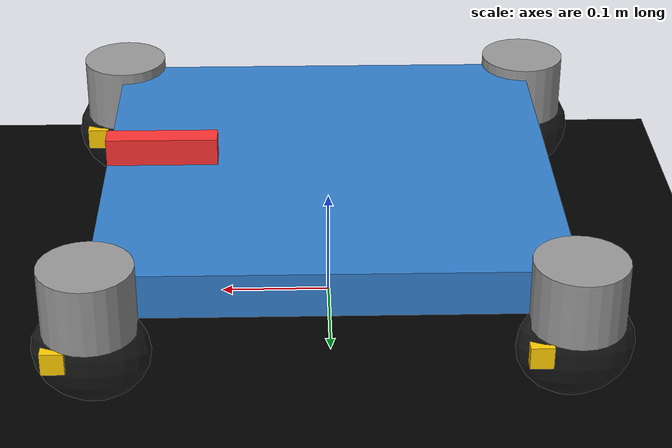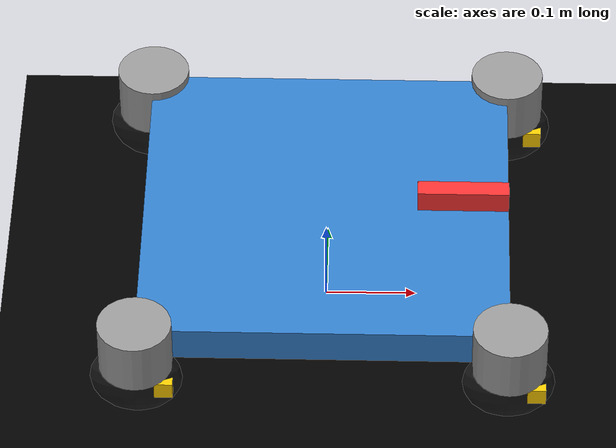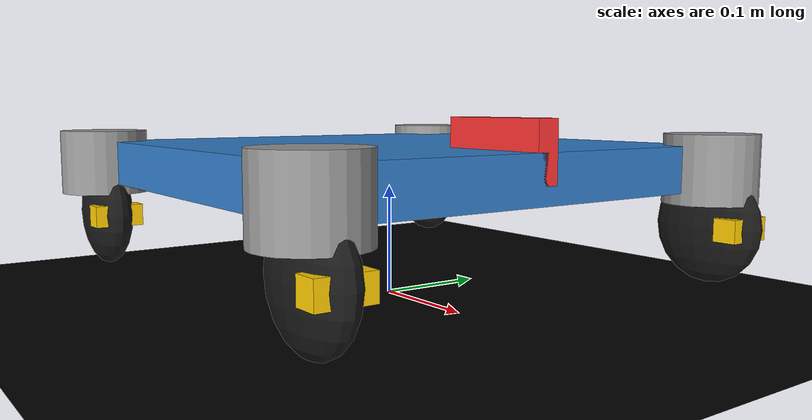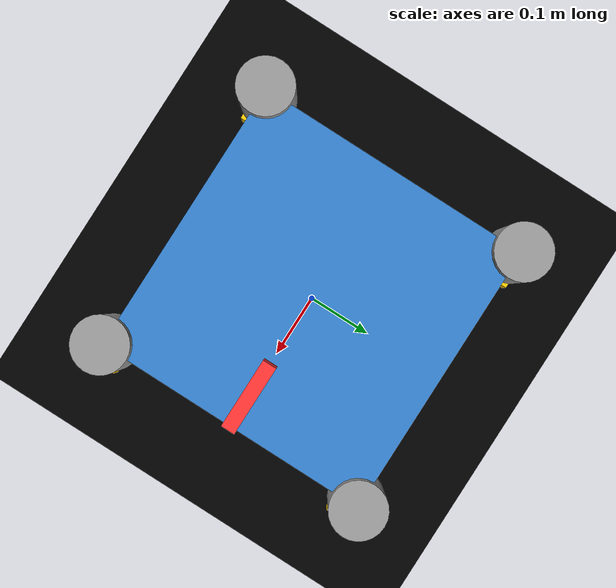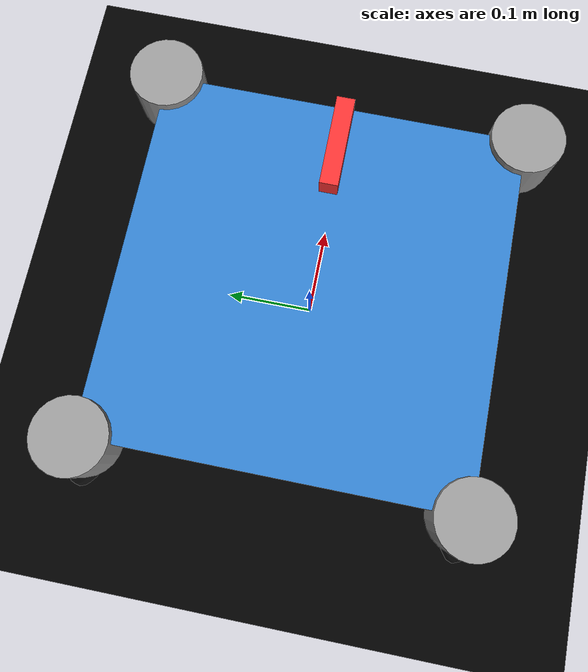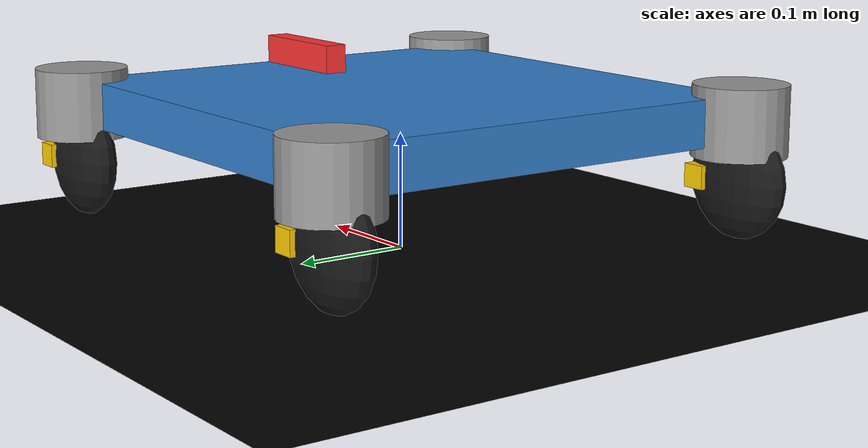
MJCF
<mujoco model="swerve_scene">
  <!--
    ================================================================
    Compiler and Option Settings
    ================================================================
  -->
  <compiler angle="degree" coordinate="local" inertiafromgeom="true"/>
  <option integrator="RK4" timestep="0.001"/>

  <!--
    ================================================================
    Assets and Includes
    ================================================================
  -->
  <asset>
    <texture name="grid_texture" type="2d" builtin="checker" width="300" height="300" rgb1="0 0 0" rgb2="0 0 0" mark="edge" markrgb="1 1 1"/>
    <material name="floor_mat" texture="grid_texture" texrepeat="20 20" texuniform="false" specular="0" shininess="0" reflectance="0"/>
  </asset>

  <!-- Include the robot's physical definition -->
  <include file="robot.xml"/>

  <!--
    Include the desired actuator model.
    Change to "actuators_pos_vel.xml" to use position/velocity controllers.
  -->
  <include file="actuators_pos_vel.xml"/>

  <!--
    ================================================================
    World Body: Contains the environment elements
    ================================================================
  -->
  <worldbody>
    <light diffuse=".5 .5 .5" pos="0 0 4" dir="0 0 -1"/>
    <geom name="floor" type="plane" size="5 5 0.1" material="floor_mat"/>
    <body name="world_link" pos="0 0 1"/>

    <!-- A camera that tracks the chassis of the robot -->
    <camera name="tracking_cam" mode="trackcom" target="chassis" pos="2 0 2"/>
  </worldbody>

  <equality>
    <weld name="gantry" body1="world_link" body2="chassis" relpose="0 0 0.05 1 0 0 0"/>
  </equality>
</mujoco>

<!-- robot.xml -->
<mujoco model="swerve_drive_robot">
  <!--
    Compiler settings for the robot model.
  -->
  <compiler inertiafromgeom="true"/>

  <!--
    ================================================================
    Assets: Materials for visualization
    ================================================================
  -->
  <asset>
    <material name="chassis_mat" rgba="0.2 0.5 0.8 1.0"/>
    <material name="pivot_mat"   rgba="0.6 0.6 0.6 1.0"/>
    <material name="wheel_mat"   rgba="0.1 0.1 0.1 1.0"/>
    <material name="indicator_mat" rgba="1.0 0.8 0.0 1.0"/> <!-- Bright Yellow -->
    <material name="front_indicator_mat" rgba="1.0 0.2 0.2 1.0"/> <!-- Bright Red -->
  </asset>

  <worldbody>
    <body name="chassis" pos="0 0 0.12">
      <joint name="root" type="free"/>
      <!-- CHASSIS GEOM: Mass increased, size is now square. -->
      <geom name="chassis_geom" type="box" size="0.2 0.2 0.02" material="chassis_mat" mass="10" contype="2" conaffinity="1"/>
      <!-- FRONT INDICATOR: A non-colliding geom to show the front. -->
      <geom name="front_indicator" type="box" size="0.05 0.01 0.025" pos="0.15 0 0.02" material="front_indicator_mat" contype="0" conaffinity="0"/>

      <body name="FR_pivot" pos="0.2 0.2 0">
        <joint name="FR_steer_joint" type="hinge" axis="0 0 1" pos="0 0 0"/>
        <!-- PIVOT GEOM: Assigned to group 1, collides with group 0. -->
        <geom name="FR_pivot_geom" type="cylinder" size="0.04 0.03" material="pivot_mat" mass="0.2" contype="2" conaffinity="1"/>
        <body name="FR_wheel" pos="0 0 -0.05">
          <joint name="FR_drive_joint" type="hinge" axis="0 1 0" pos="0 0 0"/>
          <geom name="FR_wheel_geom" type="ellipsoid" size="0.05 0.02 0.05" material="wheel_mat" mass="0.5" contype="4" conaffinity="1" condim="6" friction="1.5 0.1 0.02" solref="0.02 1" solimp="0.9 0.95 0.001"/>
          <!-- SPIN INDICATOR (non-colliding) -->
          <geom name="FR_indicator" type="box" size="0.01 0.01 0.022" pos="0.03 0 0" euler="90 0 0" material="indicator_mat" contype="0" conaffinity="0"/>
        </body>
      </body>

      <body name="FL_pivot" pos="0.2 -0.2 0">
        <joint name="FL_steer_joint" type="hinge" axis="0 0 1" pos="0 0 0"/>
        <geom name="FL_pivot_geom" type="cylinder" size="0.04 0.03" material="pivot_mat" mass="0.2" contype="2" conaffinity="1"/>
        <body name="FL_wheel" pos="0 0 -0.05">
          <joint name="FL_drive_joint" type="hinge" axis="0 1 0" pos="0 0 0"/>
          <geom name="FL_wheel_geom" type="ellipsoid" size="0.05 0.02 0.05" material="wheel_mat" mass="0.5" contype="4" conaffinity="1" condim="6" friction="1.5 0.1 0.02" solref="0.02 1" solimp="0.9 0.95 0.001"/>
          <!-- SPIN INDICATOR (non-colliding) -->
          <geom name="FL_indicator" type="box" size="0.01 0.01 0.022" pos="0.03 0 0" euler="90 0 0" material="indicator_mat" contype="0" conaffinity="0"/>
        </body>
      </body>

      <body name="BR_pivot" pos="-0.2 0.2 0">
        <joint name="BR_steer_joint" type="hinge" axis="0 0 1" pos="0 0 0"/>
        <geom name="BR_pivot_geom" type="cylinder" size="0.04 0.03" material="pivot_mat" mass="0.2" contype="2" conaffinity="1"/>
        <body name="BR_wheel" pos="0 0 -0.05">
          <joint name="BR_drive_joint" type="hinge" axis="0 1 0" pos="0 0 0"/>
          <geom name="BR_wheel_geom" type="ellipsoid" size="0.05 0.02 0.05" material="wheel_mat" mass="0.5" contype="4" conaffinity="1" condim="6" friction="1.5 0.1 0.02" solref="0.02 1" solimp="0.9 0.95 0.001"/>
          <!-- SPIN INDICATOR (non-colliding) -->
          <geom name="BR_indicator" type="box" size="0.01 0.01 0.022" pos="0.03 0 0" euler="90 0 0" material="indicator_mat" contype="0" conaffinity="0"/>
        </body>
      </body>

      <body name="BL_pivot" pos="-0.2 -0.2 0">
        <joint name="BL_steer_joint" type="hinge" axis="0 0 1" pos="0 0 0"/>
        <geom name="BL_pivot_geom" type="cylinder" size="0.04 0.03" material="pivot_mat" mass="0.2" contype="2" conaffinity="1"/>
        <body name="BL_wheel" pos="0 0 -0.05">
          <joint name="BL_drive_joint" type="hinge" axis="0 1 0" pos="0 0 0"/>
          <geom name="BL_wheel_geom" type="ellipsoid" size="0.05 0.02 0.05" material="wheel_mat" mass="0.5" contype="4" conaffinity="1" condim="6" friction="1.5 0.1 0.02" solref="0.02 1" solimp="0.9 0.95 0.001"/>
          <!-- SPIN INDICATOR (non-colliding) -->
          <geom name="BL_indicator" type="box" size="0.01 0.01 0.022" pos="0.03 0 0" euler="90 0 0" material="indicator_mat" contype="0" conaffinity="0"/>
        </body>
      </body>

    </body> <!-- End of chassis body -->
  </worldbody>
</mujoco>

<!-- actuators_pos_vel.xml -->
<mujoco>
  <actuator>
    <!-- Drive Motors (Velocity Control) -->
    <!-- 'kv' is the velocity feedback gain. Control range is in rad/s. -->
    <velocity name="FR_drive_motor" joint="FR_drive_joint" kv="0.1" ctrllimited="true" ctrlrange="-300 300"/>
    <velocity name="FL_drive_motor" joint="FL_drive_joint" kv="0.1" ctrllimited="true" ctrlrange="-300 300"/>
    <velocity name="BR_drive_motor" joint="BR_drive_joint" kv="0.1" ctrllimited="true" ctrlrange="-300 300"/>
    <velocity name="BL_drive_motor" joint="BL_drive_joint" kv="0.1" ctrllimited="true" ctrlrange="-300 300"/>

    <!-- Steering Motors (Position Control) -->
    <!-- 'kp' is the position feedback gain (stiffness). Control range is in radians. -->
    <position name="FR_steer_motor" joint="FR_steer_joint" kp="10" dampratio="1"/>
    <position name="FL_steer_motor" joint="FL_steer_joint" kp="10" dampratio="1"/>
    <position name="BR_steer_motor" joint="BR_steer_joint" kp="10" dampratio="1"/>
    <position name="BL_steer_motor" joint="BL_steer_joint" kp="10" dampratio="1"/>
  </actuator>
</mujoco>
